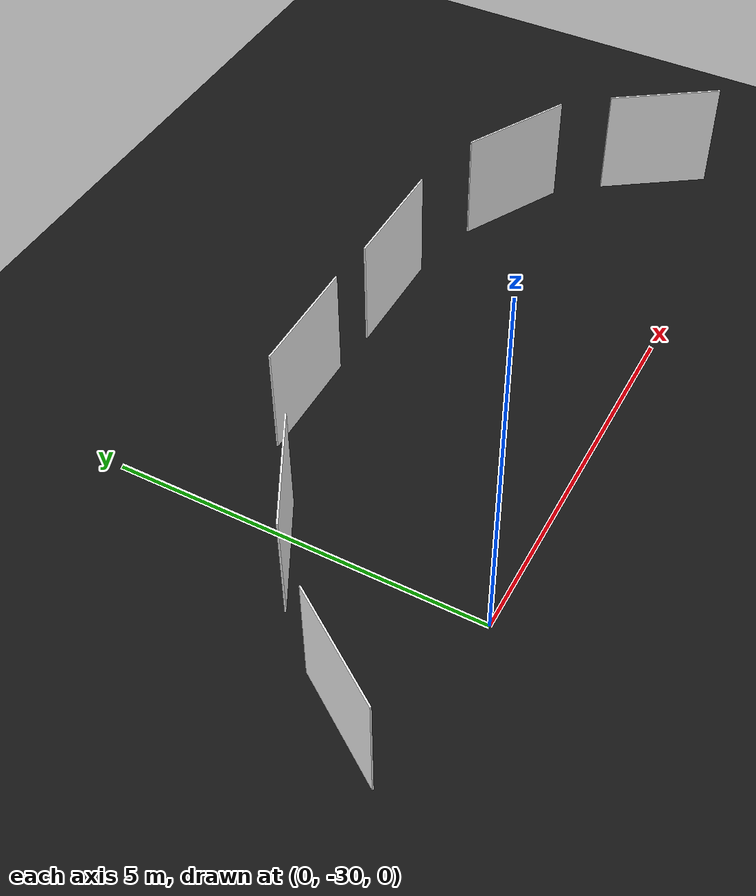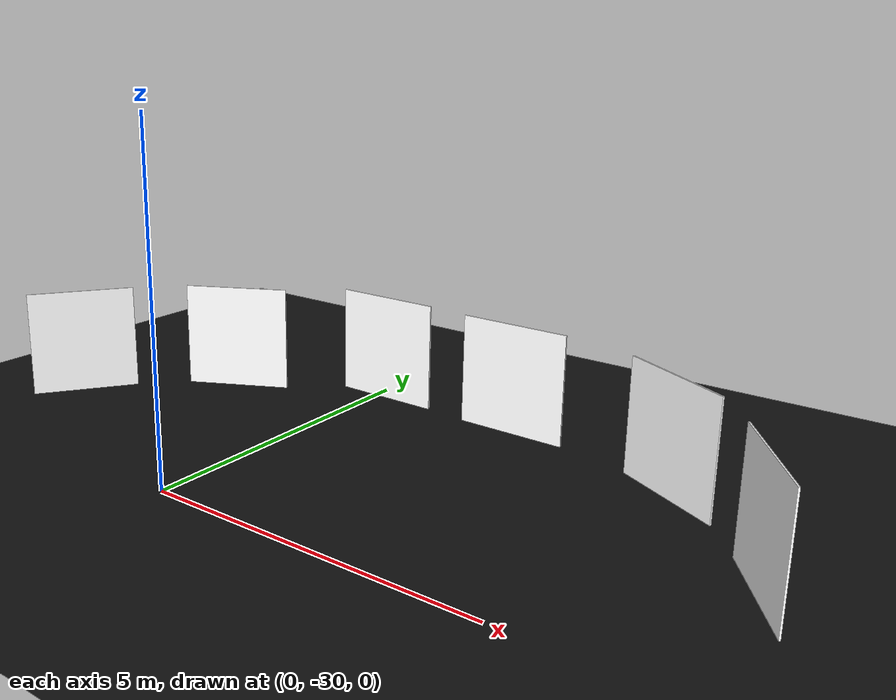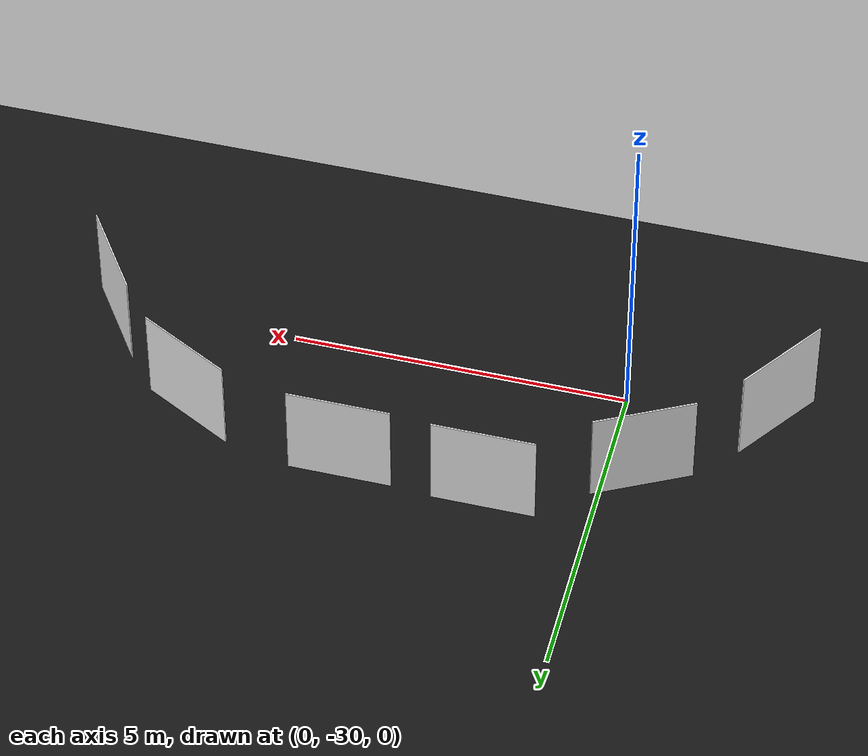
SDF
<sdf version="1.8">
 <world name="mercury_world">
  <physics name="1ms" type="ode">
   <max_step_size>0.001</max_step_size>
   <real_time_factor>1.0</real_time_factor>
   <ode>
    <solver><type>quick</type><iters>50</iters><sor>1.3</sor></solver>
    <constraints>
     <cfm>0.00001</cfm>
     <erp>0.2</erp>
     <contact_max_correcting_vel>10.0</contact_max_correcting_vel>
     <contact_surface_layer>0.001</contact_surface_layer>
    </constraints>
   </ode>
  </physics>
  <plugin filename="gz-sim-physics-system" name="gz::sim::systems::Physics"/>
  <plugin filename="gz-sim-user-commands-system" name="gz::sim::systems::UserCommands"/>
  <plugin filename="gz-sim-scene-broadcaster-system" name="gz::sim::systems::SceneBroadcaster"/>
  <plugin filename="gz-sim-contact-system" name="gz::sim::systems::Contact"/>
  <plugin filename="gz-sim-navsat-system" name="gz::sim::systems::NavSat"/>
  <plugin filename="gz-sim-imu-system" name="gz::sim::systems::Imu"/>
  <plugin filename="gz-sim-sensors-system" name="gz::sim::systems::Sensors">
   <render_engine>ogre2</render_engine>
  </plugin>
  <spherical_coordinates>
   <surface_model>EARTH_WGS84</surface_model>
   <latitude_deg>30.0444</latitude_deg>
   <longitude_deg>31.2357</longitude_deg>
   <elevation>0</elevation>
   <heading_deg>0</heading_deg>
  </spherical_coordinates>
  <light name="sun" type="directional">
   <pose>0 0 10 0 0 0</pose>
   <diffuse>1 1 1 1</diffuse>
   <specular>0.5 0.5 0.5 1</specular>
   <direction>-0.5 0.1 -0.9</direction>
  </light>
  <model name="ground_plane">
   <static>true</static>
   <link name="link">
    <collision name="collision">
     <geometry><plane><normal>0 0 1</normal><size>100 100</size></plane></geometry>
    </collision>
    <visual name="visual">
     <geometry><plane><normal>0 0 1</normal><size>100 100</size></plane></geometry>
     <material><ambient>0.08 0.08 0.08 1</ambient><diffuse>0.08 0.08 0.08 1</diffuse></material>
    </visual>
   </link>
  </model>
  <model name="photo_1">
   <static>true</static>
   <pose>-2.29 -29.39 1.5 0 0 -0.6</pose>
   <link name="link">
    <visual name="photo">
     <geometry><box><size>0.02 1.5 1.5</size></box></geometry>
     <material>
      <diffuse>1 1 1 1</diffuse>
      <specular>0 0 0 1</specular>
      <emissive>1 1 1 1</emissive>
      <pbr><metal><albedo_map>photo1.jpg</albedo_map><emissive_map>photo1.jpg</emissive_map></metal></pbr>
     </material>
     <cast_shadows>false</cast_shadows>
    </visual>
    <collision name="col"><geometry><box><size>0.02 1.5 1.5</size></box></geometry></collision>
   </link>
  </model>
  <model name="photo_2">
   <static>true</static>
   <pose>-0.67 -27.84 1.5 0 0 -1.0845</pose>
   <link name="link">
    <visual name="photo">
     <geometry><box><size>0.02 1.5 1.5</size></box></geometry>
     <material>
      <diffuse>1 1 1 1</diffuse>
      <specular>0 0 0 1</specular>
      <emissive>1 1 1 1</emissive>
      <pbr><metal><albedo_map>photo2.jpg</albedo_map><emissive_map>photo2.jpg</emissive_map></metal></pbr>
     </material>
     <cast_shadows>false</cast_shadows>
    </visual>
    <collision name="col"><geometry><box><size>0.02 1.5 1.5</size></box></geometry></collision>
   </link>
  </model>
  <model name="photo_3">
   <static>true</static>
   <pose>1.39 -26.89 1.5 0 0 1.5708</pose>
   <link name="link">
    <visual name="photo">
     <geometry><box><size>0.02 1.5 1.5</size></box></geometry>
     <material>
      <diffuse>1 1 1 1</diffuse>
      <specular>0 0 0 1</specular>
      <emissive>1 1 1 1</emissive>
      <pbr><metal><albedo_map>photo3.jpg</albedo_map><emissive_map>photo3.jpg</emissive_map></metal></pbr>
     </material>
     <cast_shadows>false</cast_shadows>
    </visual>
    <collision name="col"><geometry><box><size>0.02 1.5 1.5</size></box></geometry></collision>
   </link>
  </model>
  <model name="photo_4">
   <static>true</static>
   <pose>3.48 -26.94 1.5 0 0 1.5708</pose>
   <link name="link">
    <visual name="photo">
     <geometry><box><size>0.02 1.5 1.5</size></box></geometry>
     <material>
      <diffuse>1 1 1 1</diffuse>
      <specular>0 0 0 1</specular>
      <emissive>1 1 1 1</emissive>
      <pbr><metal><albedo_map>photo4.jpg</albedo_map><emissive_map>photo4.jpg</emissive_map></metal></pbr>
     </material>
     <cast_shadows>false</cast_shadows>
    </visual>
    <collision name="col"><geometry><box><size>0.02 1.5 1.5</size></box></geometry></collision>
   </link>
  </model>
  <model name="photo_5">
   <static>true</static>
   <pose>5.87 -27.5 1.5 0 0 1.0845</pose>
   <link name="link">
    <visual name="photo">
     <geometry><box><size>0.02 1.5 1.5</size></box></geometry>
     <material>
      <diffuse>1 1 1 1</diffuse>
      <specular>0 0 0 1</specular>
      <emissive>1 1 1 1</emissive>
      <pbr><metal><albedo_map>photo5.jpg</albedo_map><emissive_map>photo5.jpg</emissive_map></metal></pbr>
     </material>
     <cast_shadows>false</cast_shadows>
    </visual>
    <collision name="col"><geometry><box><size>0.02 1.5 1.5</size></box></geometry></collision>
   </link>
  </model>
  <model name="photo_6">
   <static>true</static>
   <pose>7.40 -29.0 1.5 0 0 0.6</pose>
   <link name="link">
    <visual name="photo">
     <geometry><box><size>0.02 1.5 1.5</size></box></geometry>
     <material>
      <diffuse>1 1 1 1</diffuse>
      <specular>0 0 0 1</specular>
      <emissive>1 1 1 1</emissive>
      <pbr><metal><albedo_map>photo6.jpg</albedo_map><emissive_map>photo6.jpg</emissive_map></metal></pbr>
     </material>
     <cast_shadows>false</cast_shadows>
    </visual>
    <collision name="col"><geometry><box><size>0.02 1.5 1.5</size></box></geometry></collision>
   </link>
  </model>
 </world>
</sdf>
